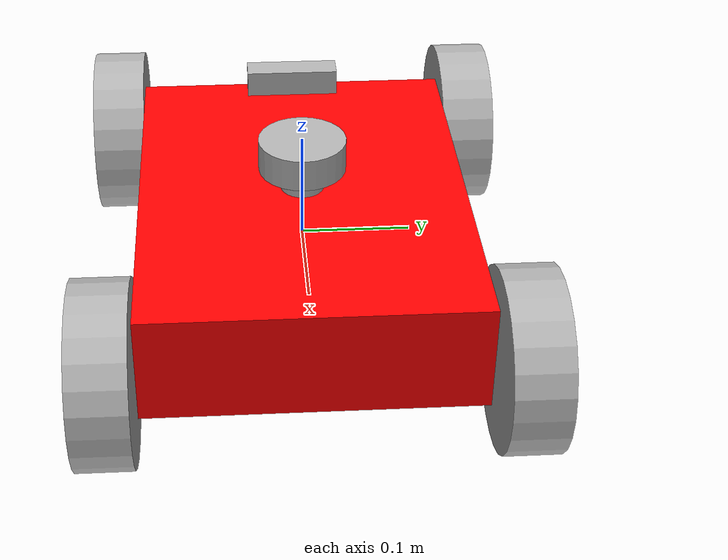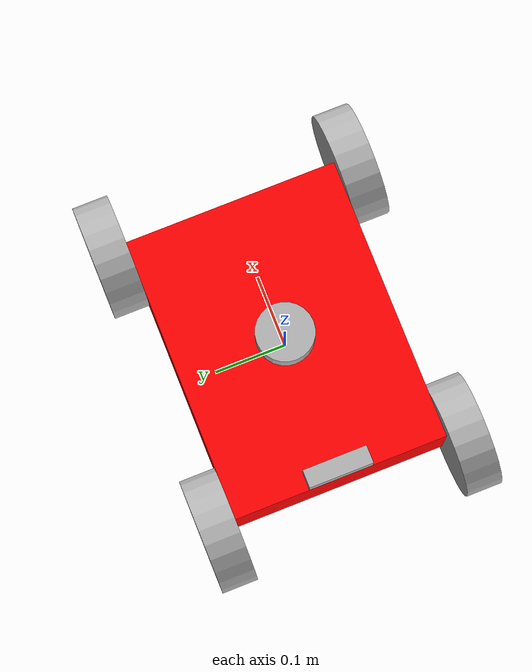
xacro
<?xml version="1.0"?>
<robot xmlns:xacro="http://www.ros.org/wiki/xacro" name="testbot">

    <xacro:property name="constant" value="0.083"/>
    <xacro:property name="mass_base" value="1.0"/>
    <xacro:property name="width_base" value="0.4"/>
    <xacro:property name="height_base" value="0.3"/>
    <xacro:property name="depth_base" value="0.1"/>

    <xacro:property name="mass_wheel" value="0.3"/>
    <xacro:property name="height_wheel" value="0.05"/>
    <xacro:property name="radius_wheel" value="0.08"/>

    <!-- Robot Base  -->
    <link name="base_link">
        <visual>
            <origin xyz="0.0 0.0 0.0" rpy="0.0 0.0 0.0"/>
            <geometry>
                <box size="${width_base} ${height_base} ${depth_base}" />
            </geometry>
            <material name="Red">
                <color rgba="1 0 0 1.0"/>
            </material>
        </visual>
        <collision>
            <geometry>
                <box size="${width_base} ${height_base} ${depth_base}" />
            </geometry>
        </collision>
        <inertial>
            <origin xyz="0.0 0.0 0.0" rpy="0.0 0.0 0.0"/>
            <mass value="${mass_base}"/>
            <inertia ixx="${constant * mass_base * (depth_base*depth_base + height_base*height_base)}" ixy="0.0" ixz="0.0"
                     iyy="${constant * mass_base * (depth_base*depth_base + width_base*width_base)}" iyz="0.0"
                     izz="${constant * mass_base * (height_base*height_base + width_base*width_base)}"/>
        </inertial>

    </link>

    <!-- Macro for creating wheel -->
    <xacro:macro name="wheel" params="name x y type joint_type">

        <link name="wheel_${name}_link">
            <visual>
                <geometry>
                    <cylinder radius="${radius_wheel}" length="${height_wheel}"/>
                </geometry>
                <material name="LightGrey">
                    <color rgba="0.7 0.7 0.7 1.0"/>
                </material>
            </visual>
            <collision>
                <geometry>
                    <cylinder radius="${radius_wheel}" length="${height_wheel}"/>
                </geometry>
            </collision>
            <inertial>
                <mass value="${mass_wheel}"/>
                <origin xyz="0.0 0.0 0.0" rpy="0.0 0.0 0.0"/>
                <inertia ixx="${constant * mass_wheel * (3 * radius_wheel * radius_wheel + height_wheel * height_wheel)}" ixy="0.0" ixz="0.0"
                         iyy="${constant * mass_wheel * (3 * radius_wheel * radius_wheel + height_wheel * height_wheel)}" iyz="0.0"
                         izz="${0.5 * mass_wheel * radius_wheel * radius_wheel}"/>
            </inertial>
        </link>

        <joint name="wheel_${name}_joint" type="${joint_type}">
            <parent link="base_link"/>
            <child link="wheel_${name}_link"/>
            <origin xyz="${x} ${y} 0" rpy="1.57 0 0"/>
            <axis xyz="0 0 1"/>
        </joint>

    </xacro:macro>

    <!-- Wheels (created using macro)-->
    <xacro:wheel name ="rear_right" x ="${width_base/2}" y="${height_base/2 + height_wheel/2}" type="right" joint_type="fixed"/>
    <xacro:wheel name ="rear_left" x ="${width_base/2}" y="-${height_base/2 + height_wheel/2}" type="left" joint_type="fixed"/>
    <xacro:wheel name ="front_right" x ="-${width_base/2}" y="${height_base/2 + height_wheel/2}" type="right" joint_type="continuous"/>
    <xacro:wheel name ="front_left" x ="-${width_base/2}" y="-${height_base/2 + height_wheel/2}" type="left" joint_type="continuous"/>

    <joint name="camera_joint" type="fixed">
        <parent link="base_link"/>
        <child link="camera_link"/>
        <origin xyz="-${width_base/2 - 0.0125} 0 ${depth_base/2 + 0.0125}" rpy="0 0 3.14"/>
        <axis xyz="0 0 0"/>
    </joint>

    <link name="camera_link">
        <visual>
            <geometry>
                <box size="0.025 0.09 0.025" />
            </geometry>
            <material name="LightGrey">
                <color rgba="0.7 0.7 0.7 1.0"/>
            </material>
        </visual>
        <collision>
            <geometry>
                <box size="0.09 0.025 0.025" />
            </geometry>
        </collision>
        <inertial>
            <mass value="0.05"/>
            <origin xyz="0.0 0.0 0.0" rpy="0.0 0.0 0.0"/>
            <inertia ixx="0.001" ixy="0.0" ixz="0.0" iyy="0.001" iyz="0.0" izz="0.001"/>
        </inertial>
    </link>

    <joint name="lidar_base_joint" type="fixed">
        <parent link="base_link"/>
        <child link="lidar_base_link"/>
        <origin xyz="0 0 ${depth_base/2 + 0.01}" rpy="0 0 0"/>
        <axis xyz="0 0 0"/>
    </joint>

    <link name="lidar_base_link">
        <visual>
            <geometry>
                <cylinder radius="0.02" length="0.02" />
            </geometry>
            <material name="LightGrey">
                <color rgba="0.7 0.7 0.7 1.0"/>
            </material>
        </visual>
        <collision>
            <geometry>
                <cylinder radius="0.04" length="0.05" />
            </geometry>
        </collision>
        <inertial>
            <mass value="0.05"/>
            <origin xyz="0.0 0.0 0.0" rpy="0.0 0.0 0.0"/>
            <inertia ixx="0.001" ixy="0.0" ixz="0.0" iyy="0.001" iyz="0.0" izz="0.001"/>
        </inertial>
    </link>

    <joint name="lidar_joint" type="fixed">
        <parent link="lidar_base_link"/>
        <child link="lidar_link"/>
        <origin xyz="0 0 0.025" rpy="0 0 0"/>
        <axis xyz="0 0 0"/>
    </joint>

    <link name="lidar_link">
        <visual>
            <geometry>
                <cylinder radius="0.04" length="0.03" />
            </geometry>
            <material name="LightGrey">
                <color rgba="0.7 0.7 0.7 1.0"/>
            </material>
        </visual>
        <collision>
            <geometry>
                <cylinder radius="0.04" length="0.05" />
            </geometry>
        </collision>
        <inertial>
            <mass value="0.05"/>
            <origin xyz="0.0 0.0 0.0" rpy="0.0 0.0 0.0"/>
            <inertia ixx="0.001" ixy="0.0" ixz="0.0" iyy="0.001" iyz="0.0" izz="0.001"/>
        </inertial>
    </link>

    <xacro:include filename="gazebo.xacro"/>

</robot>

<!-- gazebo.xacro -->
<robot xmlns:xacro="http://www.ros.org/wiki/xacro">

    <!-- Gazebo plugin for ROS Control -->
    <gazebo>
        <plugin name="gazebo_ros_control" filename="libgazebo_ros_control.so"/>
    </gazebo>

    <gazebo reference="base_link">
        <material>Gazebo/Red</material>
    </gazebo>

    <gazebo reference="wheel_front_right_link">
    <material>Gazebo/DarkGrey</material>
    <mu1>0.5</mu1>
    <mu2>0.5</mu2>
    <selfCollide>true</selfCollide>
    </gazebo>

    <gazebo reference="wheel_front_left_link">
    <material>Gazebo/DarkGrey</material>
    <mu1>0.5</mu1>
    <mu2>0.5</mu2>
    <selfCollide>true</selfCollide>
    </gazebo>

    <gazebo reference="wheel_rear_right_link">
    <material>Gazebo/DarkGrey</material>
    <mu1>0.001</mu1>
    <mu2>0.001</mu2>
    <selfCollide>true</selfCollide>
    </gazebo>

    <gazebo reference="wheel_rear_left_link">
    <material>Gazebo/DarkGrey</material>
    <mu1>0.001</mu1>
    <mu2>0.001</mu2>
    <selfCollide>true</selfCollide>
    </gazebo>

    <gazebo reference="lidar_link">
        <material>Gazebo/Grey</material>
        <sensor name="lidar_link" type="ray">
            <pose> 0 0 0 0 0 0 </pose>
            <visualize>true</visualize>
            <update_rate>10</update_rate>
            <ray>
                <scan>
                    <horizontal>
                        <samples>360</samples>
                        <min_angle>-3.14</min_angle>
                        <max_angle>3.14</max_angle>
                    </horizontal>
                </scan>
                <range>
                    <min>0.3</min>
                    <max>12</max>
                </range>
            </ray>
            <plugin name="laser_controller" filename="libgazebo_ros_laser.so">
                <topicName>/scan</topicName>
                <frame_name>lidar_link</frame_name>
            </plugin>
        </sensor>
    </gazebo>

    <joint name="camera_optical_joint" type="fixed">
        <origin xyz="0 0 0" rpy="-1.571 0 -1.571" />
        <parent link="camera_link" />
        <child link="camera_link_optical" />
    </joint>

    <link name="camera_link_optical"></link>

    <xacro:property name="link_name" value="camera_link"/>
    <xacro:property name="camera_name" value="camera"/>
    <xacro:property name="frame_name" value="camera_link_optical"/>

    <gazebo reference="${link_name}">
        <sensor name="my_camera" type="depth">
            <update_rate>20</update_rate>
            <camera>
            <horizontal_fov>1.047198</horizontal_fov>
            <image>
                <width>640</width>
                <height>480</height>
                <format>R8G8B8</format>
            </image>
            <clip>
                <near>0.05</near>
                <far>3</far>
            </clip>
            </camera>
            <plugin name="${camera_name}_controller" filename="libgazebo_ros_openni_kinect.so">
            <baseline>0.2</baseline>
            <alwaysOn>true</alwaysOn>
            <updateRate>1.0</updateRate>
            <cameraName>${camera_name}_ir</cameraName>
            <imageTopicName>/${camera_name}/color/image_raw</imageTopicName>
            <cameraInfoTopicName>/${camera_name}/color/camera_info</cameraInfoTopicName>
            <depthImageTopicName>/${camera_name}/depth/image_raw</depthImageTopicName>
            <depthImageInfoTopicName>/${camera_name}/depth/camera_info</depthImageInfoTopicName>
            <pointCloudTopicName>/${camera_name}/depth/points</pointCloudTopicName>
            <frameName>${frame_name}</frameName>
            <pointCloudCutoff>0.5</pointCloudCutoff>
            <pointCloudCutoffMax>3.0</pointCloudCutoffMax>
            <distortionK1>0.00000001</distortionK1>
            <distortionK2>0.00000001</distortionK2>
            <distortionK3>0.00000001</distortionK3>
            <distortionT1>0.00000001</distortionT1>
            <distortionT2>0.00000001</distortionT2>
            <CxPrime>0</CxPrime>
            <Cx>0</Cx>
            <Cy>0</Cy>
            <focalLength>0</focalLength>
            <hackBaseline>0</hackBaseline>
            </plugin>
        </sensor>
    </gazebo>

    <gazebo>
        <plugin name="turtlebot3_waffle_controller" filename="libgazebo_ros_diff_drive.so">
        <commandTopic>cmd_vel</commandTopic>
        <odometryTopic>odom</odometryTopic>
        <odometryFrame>odom</odometryFrame>
        <odometrySource>world</odometrySource>
        <publishOdomTF>true</publishOdomTF>
        <robotBaseFrame>base_link</robotBaseFrame>
        <publishWheelTF>false</publishWheelTF>
        <publishTf>true</publishTf>
        <publishWheelJointState>true</publishWheelJointState>
        <legacyMode>false</legacyMode>
        <updateRate>30</updateRate>
        <leftJoint>wheel_front_left_joint</leftJoint>
        <rightJoint>wheel_front_right_joint</rightJoint>
        <leftJoint>wheel_rear_left_joint</leftJoint>
        <rightJoint>wheel_rear_right_joint</rightJoint>
        <wheelSeparation>0.4</wheelSeparation>
        <wheelDiameter>0.2</wheelDiameter>
        <wheelAcceleration>1</wheelAcceleration>
        <wheelTorque>100</wheelTorque>
        <rosDebugLevel>na</rosDebugLevel>
        </plugin>
  </gazebo>

</robot>
